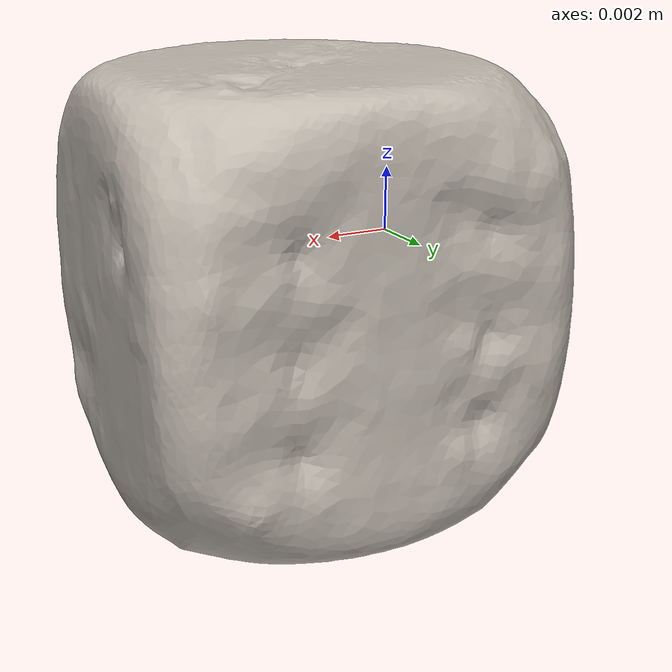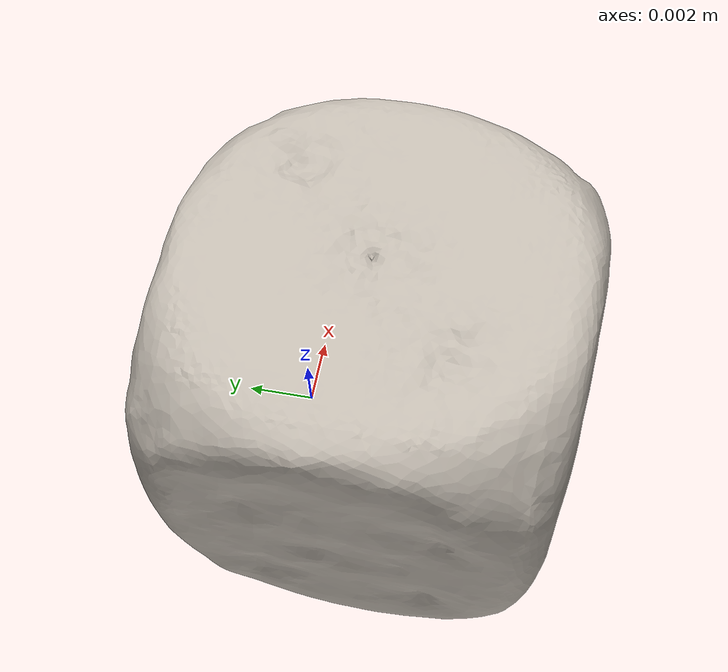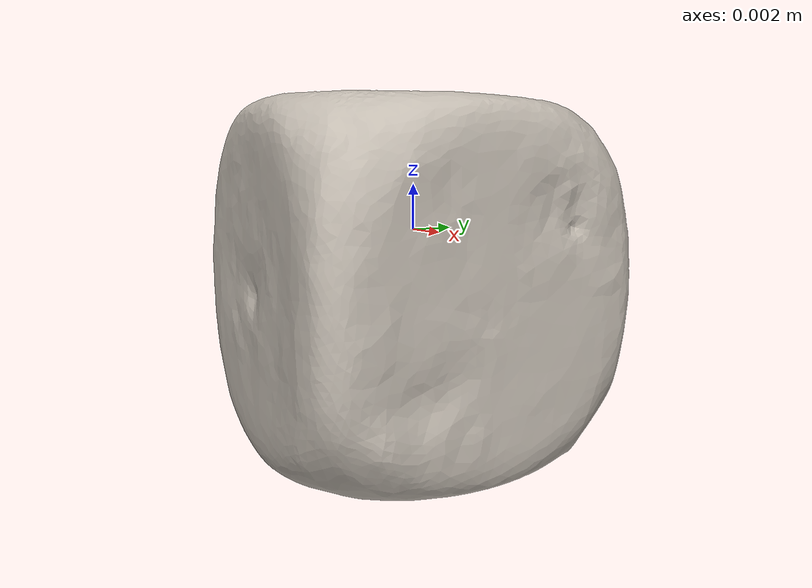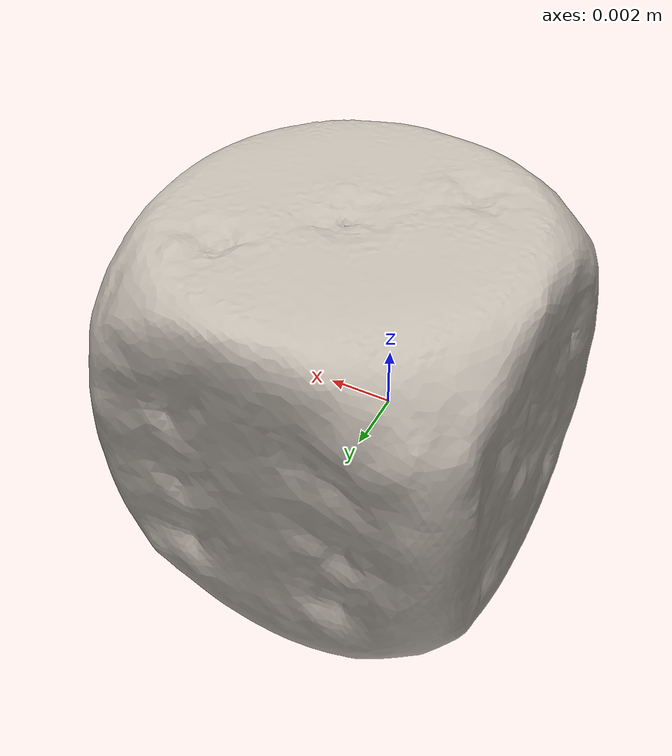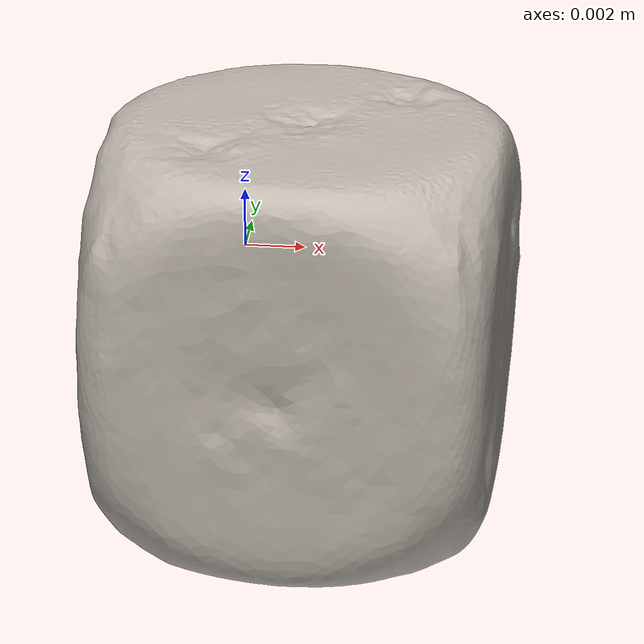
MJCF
<mujoco model="bread">
  <asset>
    <mesh file="nontextured.stl" name="obj_mesh" scale="0.8 0.8 0.8"/>
    <texture file="../../../../../textures/bread.png" type="2d" name="tex-bread" />
    <material name="bread" reflectance="0.7" texrepeat="15 15" texture="tex-bread" texuniform="true"/>
  </asset>
  <worldbody>
    <body>
      <body name="collision">
        <geom pos="0.011127000000000001 -0.009130500000000001 -0.008472" mesh="obj_mesh" type="mesh" solimp="0.998 0.998 0.001" solref="0.001 1" density="50" friction="0.95 0.3 0.1"  material="bread" group="1" condim="4"/>
      </body>
      <body name="visual">
        <geom pos="0.011127000000000001 -0.009130500000000001 -0.008472" mesh="obj_mesh" type="mesh" material="bread"  conaffinity="0" contype="0"  group="0" mass="0.0001"/>
        <geom pos="0.011127000000000001 -0.009130500000000001 -0.008472" mesh="obj_mesh" type="mesh" material="bread"  conaffinity="0" contype="0"  group="1" mass="0.0001"/>
      </body>
      <site rgba="0 0 0 0" size="0.005" pos="0 0 -0.008777" name="bottom_site"/>
      <site rgba="0 0 0 0" size="0.005" pos="0 0 0.008777" name="top_site"/>
      <site rgba="0 0 0 0" size="0.005" pos="0.008579 0.0085395 0.008777" name="horizontal_radius_site"/>
    </body>
  </worldbody>
</mujoco>
